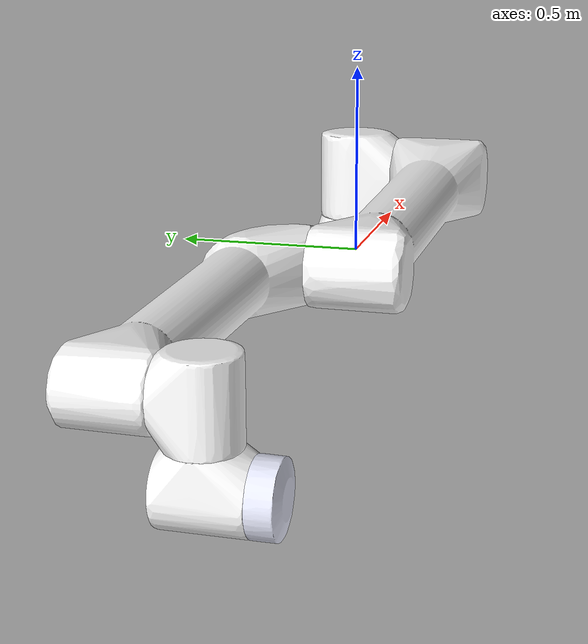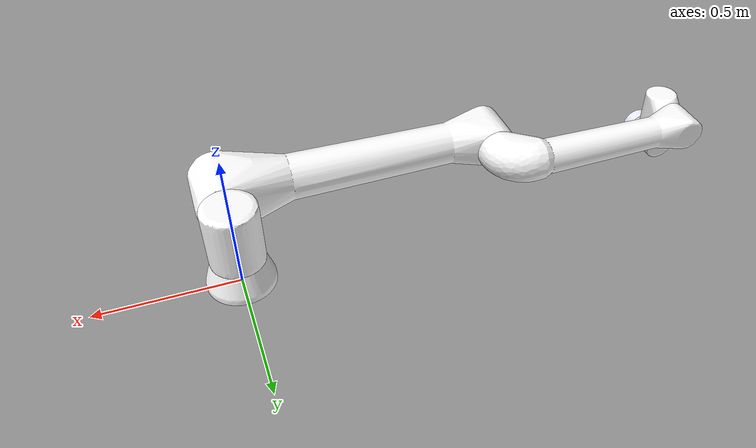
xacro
<?xml version="1.0" encoding="utf-8"?>
<!-- This URDF was artisanally crafted by Jacob Beck (jbeck@spaceroboticsworkers.com) -->
<robot xmlns:xacro="http://wiki.ros.org/xacro" name="fairino20_v6_robot">
  <!-- Declare arguments -->
  <xacro:arg name="namespace" default="" />
  <xacro:arg name="prefix" default="" />
  <xacro:arg name="parent" default="world" />
  <xacro:arg name="xyz" default="0 0 0" />
  <xacro:arg name="rpy" default="0 0 0" />
  <xacro:arg name="mode" default="mock" />
  <xacro:arg name="control_yaml"
    default="$(find fairino20_v6_moveit2_config)/config/ros2_controllers.yaml" />

  <!-- Include required macros -->
  <xacro:include filename="$(find fairino_description)/urdf/fairino20_v6/fairino20_v6.ros2_control.xacro" />
  <xacro:include
    filename="$(find fairino_description)/urdf/fairino20_v6/fairino20_v6.description.xacro" />
  <xacro:include filename="$(find fairino_description)/urdf/fairino20_v6/fairino20_v6.gazebo.xacro" />

  <!-- Build robot -->
  <link name="world" />

  <xacro:fairino20_v6_description prefix="$(arg prefix)" parent="$(arg parent)">
    <origin xyz="$(arg xyz)" rpy="$(arg rpy)" />
  </xacro:fairino20_v6_description>

  <xacro:fairino20_v6_ros2_control prefix="$(arg prefix)" mode="$(arg mode)" />

  <xacro:property name="mode" value="$(arg mode)" /> <!-- Get arg as property for evaluation -->
  <xacro:if value="${mode == 'gazebo'}">
    <xacro:fairino20_v6_gazebo namespace="$(arg namespace)" control_yaml="$(arg control_yaml)" />
  </xacro:if>
</robot>

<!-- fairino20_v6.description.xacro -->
<!-- This URDF was artisanally crafted by Jacob Beck (jbeck@spaceroboticsworkers.com) -->
<robot xmlns:xacro="http://wiki.ros.org/xacro">
  <xacro:macro name="fairino20_v6_description" params="prefix parent *origin">
    <!-- Include definitions -->
    <xacro:include filename="$(find fairino_description)/urdf/common/materials.xacro" />

    <!-- Connection to parent -->
    <joint name="${prefix}base_joint" type="fixed">
      <xacro:insert_block name="origin" />
      <parent link="${parent}" />
      <child link="${prefix}base_link" />
    </joint>

    <!-- Robot geometry definition -->
    <link name="${prefix}base_link">
      <inertial>
        <origin xyz="-2.1681E-05 -6.0648E-05 0.043457" rpy="0 0 0" />
        <mass value="9.2502" />
        <inertia ixx="0.034499" ixy="1.6641E-05" ixz="-7.478E-06" iyy="0.034518" iyz="-2.0849E-05"
          izz="0.05496" />
      </inertial>
      <visual>
        <origin xyz="0 0 0" rpy="0 0 0" />
        <geometry>
          <mesh filename="package://fairino_description/meshes/fairino20_v6/visual/base_link.stl" />
        </geometry>
        <material name="white" />
      </visual>
      <collision>
        <origin xyz="0 0 0" rpy="0 0 0" />
        <geometry>
          <mesh
            filename="package://fairino_description/meshes/fairino20_v6/collision/base_link_collision.stl" />
        </geometry>
      </collision>
    </link>

    <joint name="${prefix}j1" type="revolute">
      <origin xyz="0 0 0" rpy="0 0 0" />
      <parent link="${prefix}base_link" />
      <child link="${prefix}shoulder_link" />
      <axis xyz="0 0 1" />
      <limit lower="-3.0543" upper="3.0543" effort="1400" velocity="3.15" />
      <calibration rising="0" falling="0" />
      <dynamics damping="0" friction="0" />
      <safety_controller soft_upper_limit="3.0543261" soft_lower_limit="-3.0543261"
        k_position="100.0" k_velocity="40.0" />
    </joint>

    <link name="${prefix}shoulder_link">
      <inertial>
        <origin xyz="-0.00019 -0.03657 0.215" rpy="0 0 0" />
        <mass value="20.79" />
        <inertia ixx="0.11681303" ixy="0.000010684" ixz="0.00015198" iyy="0.09147711"
          iyz="0.00458985" izz="0.11321598" />
      </inertial>
      <visual>
        <origin xyz="0 0 0" rpy="0 0 0" />
        <geometry>
          <mesh
            filename="package://fairino_description/meshes/fairino20_v6/visual/shoulder_link.stl" />
        </geometry>
        <material name="white" />
      </visual>
      <collision>
        <origin xyz="0 0 0" rpy="0 0 0" />
        <geometry>
          <mesh
            filename="package://fairino_description/meshes/fairino20_v6/collision/shoulder_link_collision.stl" />
        </geometry>
      </collision>
    </link>

    <joint name="${prefix}j2" type="revolute">
      <origin xyz="0 0 0.215" rpy="${pi / 2} 0 0" />
      <parent link="${prefix}shoulder_link" />
      <child link="${prefix}upperarm_link" />
      <axis xyz="0 0 1" />
      <limit lower="-4.6251" upper="1.4835" effort="1400" velocity="3.15" />
      <calibration rising="0" falling="0" />
      <dynamics damping="0" friction="0" />
      <safety_controller soft_upper_limit="3.0543261" soft_lower_limit="-3.0543261"
        k_position="100.0" k_velocity="40.0" />
    </joint>

    <link name="${prefix}upperarm_link">
      <inertial>
        <origin xyz="-0.60525 0.00006 0.20294" rpy="0 0 0" />
        <mass value="42.84" />
        <inertia ixx="0.21509702" ixy="0.00193218" ixz="0.11070934" iyy="8.34192406"
          iyz="0.00005317" izz="8.29611691" />
      </inertial>
      <visual>
        <origin xyz="0 0 0" rpy="0 0 0" />
        <geometry>
          <mesh
            filename="package://fairino_description/meshes/fairino20_v6/visual/upperarm_link.stl" />
        </geometry>
        <material name="white" />
      </visual>
      <collision>
        <origin xyz="0 0 0" rpy="0 0 0" />
        <geometry>
          <mesh
            filename="package://fairino_description/meshes/fairino20_v6/collision/upperarm_link_collision.stl" />
        </geometry>
      </collision>
    </link>

    <joint name="${prefix}j3" type="revolute">
      <origin xyz="-1 0 0" rpy="0 0 0" />
      <parent link="${prefix}upperarm_link" />
      <child link="${prefix}forearm_link" />
      <axis xyz="0 0 1" />
      <limit lower="-2.8274" upper="2.8274" effort="635" velocity="3.15" />
      <calibration rising="0" falling="0" />
      <dynamics damping="0" friction="0" />
      <safety_controller soft_upper_limit="3.0543261" soft_lower_limit="-3.0543261"
        k_position="100.0" k_velocity="40.0" />
    </joint>

    <link name="${prefix}forearm_link">
      <inertial>
        <origin xyz="-0.26284 0.00022 0.04308" rpy="0 0 0" />
        <mass value="9.88" />
        <inertia ixx="0.03036772" ixy="0.00023857" ixz="0.00627398" iyy="0.86016899"
          iyz="0.00000777" izz="0.85782697" />
      </inertial>
      <visual>
        <origin xyz="0 0 0" rpy="0 0 0" />
        <geometry>
          <mesh filename="package://fairino_description/meshes/fairino20_v6/visual/forearm_link.stl" />
        </geometry>
        <material name="white" />
      </visual>
      <collision>
        <origin xyz="0 0 0" rpy="0 0 0" />
        <geometry>
          <mesh
            filename="package://fairino_description/meshes/fairino20_v6/collision/forearm_link_collision.stl" />
        </geometry>
      </collision>
    </link>

    <joint name="${prefix}j4" type="revolute">
      <origin xyz="-0.716 0 0" rpy="0 0 0" />
      <parent link="${prefix}forearm_link" />
      <child link="${prefix}wrist1_link" />
      <axis xyz="0 0 1" />
      <limit lower="-4.6251" upper="1.4835" effort="332" velocity="3.2" />
      <calibration rising="0" falling="0" />
      <dynamics damping="0" friction="0" />
      <safety_controller soft_upper_limit="3.0543261" soft_lower_limit="-3.0543261"
        k_position="100.0" k_velocity="40.0" />
    </joint>

    <link name="${prefix}wrist1_link">
      <inertial>
        <origin xyz="0.00023 -0.00228 0.166" rpy="0 0 0" />
        <mass value="4.64" />
        <inertia ixx="0.00933772" ixy="0.00003325" ixz="0.00005007" iyy="0.00926897"
          iyz="0.00021949" izz="0.00774545" />
      </inertial>
      <visual>
        <origin xyz="0 0 0" rpy="0 0 0" />
        <geometry>
          <mesh filename="package://fairino_description/meshes/fairino20_v6/visual/wrist1_link.stl" />
        </geometry>
        <material name="white" />
      </visual>
      <collision>
        <origin xyz="0 0 0" rpy="0 0 0" />
        <geometry>
          <mesh
            filename="package://fairino_description/meshes/fairino20_v6/collision/wrist1_link_collision.stl" />
        </geometry>
      </collision>
    </link>

    <joint name="${prefix}j5" type="revolute">
      <origin xyz="0 0 0.16601" rpy="${pi / 2} 0 0" />
      <parent link="${prefix}wrist1_link" />
      <child link="${prefix}wrist2_link" />
      <axis xyz="0 0 1" />
      <limit lower="-3.0543" upper="3.0543" effort="332" velocity="3.2" />
      <calibration rising="0" falling="0" />
      <dynamics damping="0" friction="0" />
      <safety_controller soft_upper_limit="3.0543261" soft_lower_limit="-3.0543261"
        k_position="100.0" k_velocity="40.0" />
    </joint>

    <link name="${prefix}wrist2_link">
      <inertial>
        <origin xyz="-0.00023 0.00228 0.138" rpy="0 0 0" />
        <mass value="4.64" />
        <inertia ixx="0.00933772" ixy="0.00003325" ixz="-0.00005007" iyy="0.00926897"
          iyz="-0.00021949" izz="0.00774545" />
      </inertial>
      <visual>
        <origin xyz="0 0 0" rpy="0 0 0" />
        <geometry>
          <mesh filename="package://fairino_description/meshes/fairino20_v6/visual/wrist2_link.stl" />
        </geometry>
        <material name="white" />
      </visual>
      <collision>
        <origin xyz="0 0 0" rpy="0 0 0" />
        <geometry>
          <mesh
            filename="package://fairino_description/meshes/fairino20_v6/collision/wrist2_link_collision.stl" />
        </geometry>
      </collision>
    </link>

    <joint name="${prefix}j6" type="revolute">
      <origin xyz="0 0 0.138" rpy="${-pi / 2} 0 0" />
      <parent link="${prefix}wrist2_link" />
      <child link="${prefix}wrist3_link" />
      <axis xyz="0 0 1" />
      <limit lower="-3.0543" upper="3.0543" effort="332" velocity="3.2" />
      <calibration rising="0" falling="0" />
      <dynamics damping="0" friction="0" />
      <safety_controller soft_upper_limit="3.0543261" soft_lower_limit="-3.0543261"
        k_position="100.0" k_velocity="40.0" />
    </joint>

    <link name="${prefix}wrist3_link">
      <inertial>
        <origin xyz="-0.00211 -0.00196 0.102" rpy="0 0 0" />
        <mass value="0.6" />
        <inertia ixx="0.00071709" ixy="0.00000175" ixz="0.00000555" iyy="0.00071408"
          iyz="0.00000531" izz="0.00127558" />
      </inertial>
      <visual>
        <origin xyz="0 0 0" rpy="0 0 0" />
        <geometry>
          <mesh filename="package://fairino_description/meshes/fairino20_v6/visual/wrist3_link.stl" />
        </geometry>
        <material name="silver" />
      </visual>
      <collision>
        <origin xyz="0 0 0" rpy="0 0 0" />
        <geometry>
          <mesh
            filename="package://fairino_description/meshes/fairino20_v6/collision/wrist3_link_collision.stl" />
        </geometry>
      </collision>
    </link>
  </xacro:macro>
</robot>

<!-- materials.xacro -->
<!-- This URDF was artisanally crafted by Jacob Beck (jbeck@spaceroboticsworkers.com) -->
<robot xmlns:xacro="http://wiki.ros.org/xacro">
  <!-- Define materials -->
  <material name="white">
    <color rgba="1 1 1 1" />
  </material>
  <material name="silver">
    <color rgba="0.90 0.91 0.98 1" />
  </material>
</robot>
